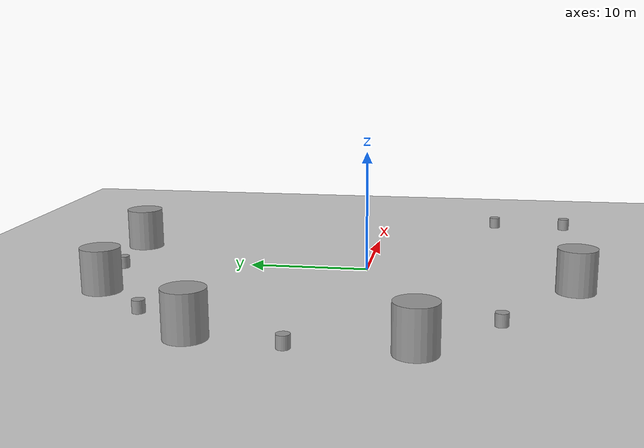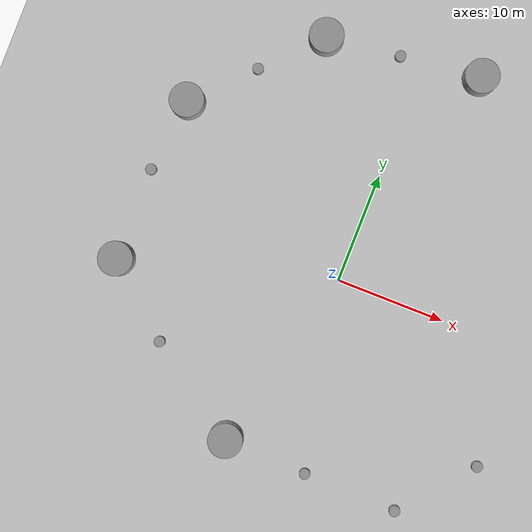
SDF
<sdf version="1.7">
 <world name="default">
  <light name="sun" type="directional">
   <pose>0 0 10 0 -0 0</pose>
   <diffuse>0.8 0.8 0.8 1</diffuse>
   <specular>0.2 0.2 0.2 1</specular>
   <attenuation>
    <range>1000</range>
    <constant>0.9</constant>
    <linear>0.01</linear>
    <quadratic>0.001</quadratic>
   </attenuation>
   <direction>-0.5 0.1 -0.9</direction>
   <spot><inner_angle>0</inner_angle><outer_angle>0</outer_angle><falloff>0</falloff></spot>
  </light>
  <model name="ground_plane">
   <static>1</static>
   <link name="link">
    <collision name="collision">
     <geometry><plane><normal>0 0 1</normal><size>100 100</size></plane></geometry>
     <surface>
      <contact><collide_bitmask>65535</collide_bitmask></contact>
      <friction><ode><mu>100</mu><mu2>50</mu2></ode></friction>
     </surface>
    </collision>
    <visual name="visual">
     <cast_shadows>0</cast_shadows>
     <geometry><plane><normal>0 0 1</normal><size>100 100</size></plane></geometry>
     <material>
      <script><uri>file://media/materials/scripts/gazebo.material</uri><name>Gazebo/Grey</name></script>
     </material>
    </visual>
   </link>
  </model>
  <gravity>0 0 -9.8</gravity>
  <magnetic_field>6e-06 2.3e-05 -4.2e-05</magnetic_field>
  <atmosphere type="adiabatic"/>
  <physics type="ode">
   <max_step_size>0.001</max_step_size>
   <real_time_factor>1</real_time_factor>
   <real_time_update_rate>1000</real_time_update_rate>
  </physics>
  <scene><ambient>0.4 0.4 0.4 1</ambient><background>0.7 0.7 0.7 1</background><shadows>1</shadows></scene>
  <spherical_coordinates>
   <surface_model>EARTH_WGS84</surface_model>
   <latitude_deg>0</latitude_deg>
   <longitude_deg>0</longitude_deg>
   <elevation>0</elevation>
   <heading_deg>0</heading_deg>
  </spherical_coordinates>
  <model name="unit_cylinder">
   <pose>12.1108 -17.2328 1.76264 0 -0 0.000214</pose>
   <link name="link">
    <inertial>
     <mass>1</mass>
     <inertia><ixx>0.145833</ixx><ixy>0</ixy><ixz>0</ixz><iyy>0.145833</iyy><iyz>0</iyz><izz>0.125</izz></inertia>
    </inertial>
    <collision name="collision">
     <geometry><cylinder><radius>0.5</radius><length>1</length></cylinder></geometry>
    </collision>
    <visual name="visual">
     <geometry><cylinder><radius>0.5</radius><length>1</length></cylinder></geometry>
     <material>
      <script><name>Gazebo/Grey</name><uri>file://media/materials/scripts/gazebo.material</uri></script>
     </material>
    </visual>
   </link>
  </model>
  <model name="unit_cylinder_clone">
   <pose>-4.15849 -16.8337 1.76264 0 -0 0.000214</pose>
   <link name="link">
    <inertial>
     <mass>1</mass>
     <inertia><ixx>0.145833</ixx><ixy>0</ixy><ixz>0</ixz><iyy>0.145833</iyy><iyz>0</iyz><izz>0.125</izz></inertia>
    </inertial>
    <collision name="collision">
     <geometry><cylinder><radius>1.56936</radius><length>3.52529</length></cylinder></geometry>
    </collision>
    <visual name="visual">
     <geometry><cylinder><radius>1.56936</radius><length>3.52529</length></cylinder></geometry>
     <material>
      <script><name>Gazebo/Grey</name><uri>file://media/materials/scripts/gazebo.material</uri></script>
     </material>
    </visual>
   </link>
  </model>
  <model name="unit_cylinder_clone_0">
   <pose>-19.0627 -5.44056 1.76264 0 -0 0.000214</pose>
   <link name="link">
    <inertial>
     <mass>1</mass>
     <inertia><ixx>0.145833</ixx><ixy>0</ixy><ixz>0</ixz><iyy>0.145833</iyy><iyz>0</iyz><izz>0.125</izz></inertia>
    </inertial>
    <collision name="collision">
     <geometry><cylinder><radius>1.56936</radius><length>3.52529</length></cylinder></geometry>
    </collision>
    <visual name="visual">
     <geometry><cylinder><radius>1.56936</radius><length>3.52529</length></cylinder></geometry>
     <material>
      <script><name>Gazebo/Grey</name><uri>file://media/materials/scripts/gazebo.material</uri></script>
     </material>
    </visual>
   </link>
  </model>
  <model name="unit_cylinder_clone_1">
   <pose>-18.3352 9.89907 1.76265 1e-06 0 0.000215</pose>
   <link name="link">
    <inertial>
     <mass>1</mass>
     <inertia><ixx>0.145833</ixx><ixy>0</ixy><ixz>0</ixz><iyy>0.145833</iyy><iyz>0</iyz><izz>0.125</izz></inertia>
    </inertial>
    <collision name="collision">
     <geometry><cylinder><radius>1.56936</radius><length>3.52529</length></cylinder></geometry>
    </collision>
    <visual name="visual">
     <geometry><cylinder><radius>1.56936</radius><length>3.52529</length></cylinder></geometry>
     <material>
      <script><name>Gazebo/Grey</name><uri>file://media/materials/scripts/gazebo.material</uri></script>
     </material>
    </visual>
   </link>
  </model>
  <model name="unit_cylinder_clone_2">
   <pose>-8.93653 19.7103 1.76264 1e-06 0 0.000215</pose>
   <link name="link">
    <inertial>
     <mass>1</mass>
     <inertia><ixx>0.145833</ixx><ixy>0</ixy><ixz>0</ixz><iyy>0.145833</iyy><iyz>0</iyz><izz>0.125</izz></inertia>
    </inertial>
    <collision name="collision">
     <geometry><cylinder><radius>1.56936</radius><length>3.52529</length></cylinder></geometry>
    </collision>
    <visual name="visual">
     <geometry><cylinder><radius>1.56936</radius><length>3.52529</length></cylinder></geometry>
     <material>
      <script><name>Gazebo/Grey</name><uri>file://media/materials/scripts/gazebo.material</uri></script>
     </material>
    </visual>
   </link>
  </model>
  <model name="unit_cylinder_clone_3">
   <pose>5.1579 21.4058 1.76264 0 -0 0.000215</pose>
   <link name="link">
    <inertial>
     <mass>1</mass>
     <inertia><ixx>0.145833</ixx><ixy>0</ixy><ixz>0</ixz><iyy>0.145833</iyy><iyz>0</iyz><izz>0.125</izz></inertia>
    </inertial>
    <collision name="collision">
     <geometry><cylinder><radius>1.56936</radius><length>3.52529</length></cylinder></geometry>
    </collision>
    <visual name="visual">
     <geometry><cylinder><radius>1.56936</radius><length>3.52529</length></cylinder></geometry>
     <material>
      <script><name>Gazebo/Grey</name><uri>file://media/materials/scripts/gazebo.material</uri></script>
     </material>
    </visual>
   </link>
  </model>
  <model name="unit_cylinder_0">
   <pose>-2.1803 20.6612 0.499992 -3e-06 4e-06 0</pose>
   <link name="link">
    <inertial>
     <mass>1</mass>
     <inertia><ixx>0.145833</ixx><ixy>0</ixy><ixz>0</ixz><iyy>0.145833</iyy><iyz>0</iyz><izz>0.125</izz></inertia>
    </inertial>
    <collision name="collision">
     <geometry><cylinder><radius>0.5</radius><length>1</length></cylinder></geometry>
    </collision>
    <visual name="visual">
     <geometry><cylinder><radius>0.5</radius><length>1</length></cylinder></geometry>
     <material>
      <script><name>Gazebo/Grey</name><uri>file://media/materials/scripts/gazebo.material</uri></script>
     </material>
    </visual>
   </link>
  </model>
  <model name="unit_cylinder_1">
   <pose>-13.6093 14.9521 0.499992 -3e-06 -4e-06 -0</pose>
   <link name="link">
    <inertial>
     <mass>1</mass>
     <inertia><ixx>0.145833</ixx><ixy>0</ixy><ixz>0</ixz><iyy>0.145833</iyy><iyz>0</iyz><izz>0.125</izz></inertia>
    </inertial>
    <collision name="collision">
     <geometry><cylinder><radius>0.5</radius><length>1</length></cylinder></geometry>
    </collision>
    <visual name="visual">
     <geometry><cylinder><radius>0.5</radius><length>1</length></cylinder></geometry>
     <material>
      <script><name>Gazebo/Grey</name><uri>file://media/materials/scripts/gazebo.material</uri></script>
     </material>
    </visual>
   </link>
  </model>
  <model name="unit_cylinder_2">
   <pose>-19.216 3.07988 0.499993 -3e-06 -4e-06 -0</pose>
   <link name="link">
    <inertial>
     <mass>1</mass>
     <inertia><ixx>0.145833</ixx><ixy>0</ixy><ixz>0</ixz><iyy>0.145833</iyy><iyz>0</iyz><izz>0.125</izz></inertia>
    </inertial>
    <collision name="collision">
     <geometry><cylinder><radius>0.5</radius><length>1</length></cylinder></geometry>
    </collision>
    <visual name="visual">
     <geometry><cylinder><radius>0.5</radius><length>1</length></cylinder></geometry>
     <material>
      <script><name>Gazebo/Grey</name><uri>file://media/materials/scripts/gazebo.material</uri></script>
     </material>
    </visual>
   </link>
  </model>
  <model name="unit_cylinder_3">
   <pose>-12.8644 -10.9636 0.499997 3e-06 4e-06 -0</pose>
   <link name="link">
    <inertial>
     <mass>1</mass>
     <inertia><ixx>0.145833</ixx><ixy>0</ixy><ixz>0</ixz><iyy>0.145833</iyy><iyz>0</iyz><izz>0.125</izz></inertia>
    </inertial>
    <collision name="collision">
     <geometry><cylinder><radius>0.5</radius><length>1</length></cylinder></geometry>
    </collision>
    <visual name="visual">
     <geometry><cylinder><radius>0.5</radius><length>1</length></cylinder></geometry>
     <material>
      <script><name>Gazebo/Grey</name><uri>file://media/materials/scripts/gazebo.material</uri></script>
     </material>
    </visual>
   </link>
  </model>
  <model name="unit_cylinder_4">
   <pose>3.53333 -17.2111 0.499993 -3e-06 -4e-06 -0</pose>
   <link name="link">
    <inertial>
     <mass>1</mass>
     <inertia><ixx>0.145833</ixx><ixy>0</ixy><ixz>0</ixz><iyy>0.145833</iyy><iyz>0</iyz><izz>0.125</izz></inertia>
    </inertial>
    <collision name="collision">
     <geometry><cylinder><radius>0.5</radius><length>1</length></cylinder></geometry>
    </collision>
    <visual name="visual">
     <geometry><cylinder><radius>0.5</radius><length>1</length></cylinder></geometry>
     <material>
      <script><name>Gazebo/Grey</name><uri>file://media/materials/scripts/gazebo.material</uri></script>
     </material>
    </visual>
   </link>
  </model>
  <model name="unit_cylinder_5">
   <pose>17.6415 -10.9647 0.499997 3e-06 4e-06 -0</pose>
   <link name="link">
    <inertial>
     <mass>1</mass>
     <inertia><ixx>0.145833</ixx><ixy>0</ixy><ixz>0</ixz><iyy>0.145833</iyy><iyz>0</iyz><izz>0.125</izz></inertia>
    </inertial>
    <collision name="collision">
     <geometry><cylinder><radius>0.5</radius><length>1</length></cylinder></geometry>
    </collision>
    <visual name="visual">
     <geometry><cylinder><radius>0.5</radius><length>1</length></cylinder></geometry>
     <material>
      <script><name>Gazebo/Grey</name><uri>file://media/materials/scripts/gazebo.material</uri></script>
     </material>
    </visual>
   </link>
  </model>
 </world>
</sdf>
